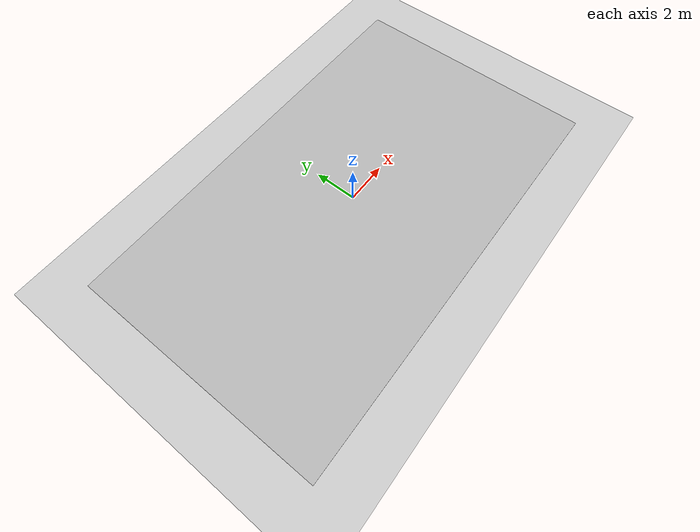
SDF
<?xml version="1.0" ?>
<sdf version="1.6">

  <world name="factory_world">

    <!-- Physics -->

    <!-- ROS 2 Gazebo state services -->
    <plugin name="gazebo_ros_state" filename="libgazebo_ros_state.so"/>

    <physics type="ode">
      <max_step_size>0.001</max_step_size>
      <real_time_update_rate>1000</real_time_update_rate>
    </physics>

    <!-- Gravity -->

    <gravity>0 0 -9.81</gravity>

    <!-- Ground Plane -->

    <include>
      <uri>model://ground_plane</uri>
    </include>

    <!-- Sun -->

    <include>
      <uri>model://sun</uri>
    </include>

    <!-- Factory Floor -->

    <model name="factory_floor">

      <static>true</static>

      <link name="floor_link">

        <collision name="floor_collision">

          <geometry>
            <box>
              <size>20 12 0.1</size>
            </box>
          </geometry>

        </collision>

        <visual name="floor_visual">

          <geometry>
            <box>
              <size>20 12 0.1</size>
            </box>
          </geometry>

        </visual>

      </link>

      <pose>0 0 -0.05 0 0 0</pose>

    </model>

  </world>

</sdf>
